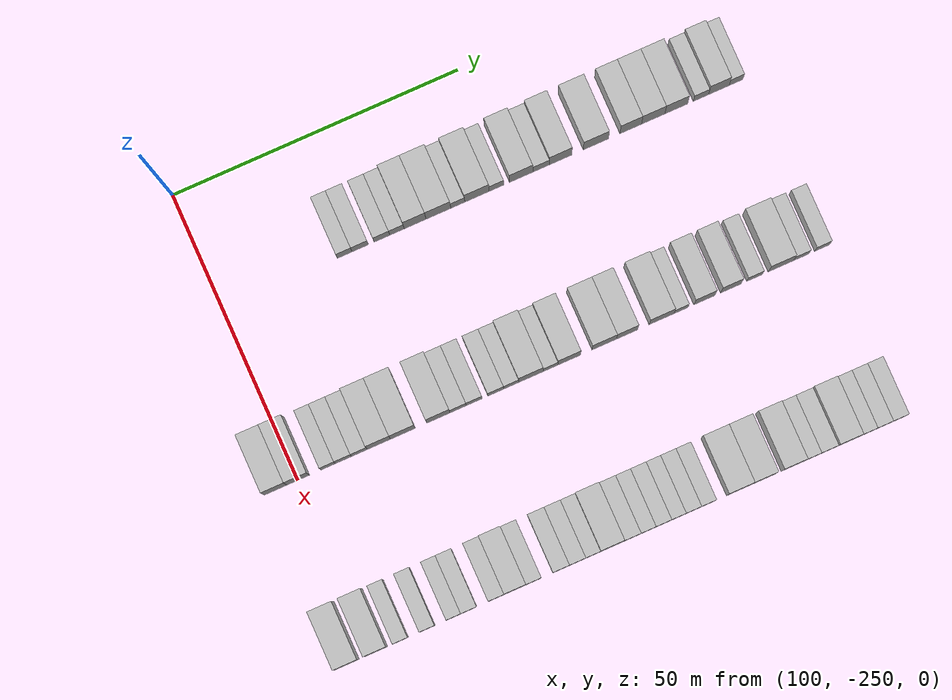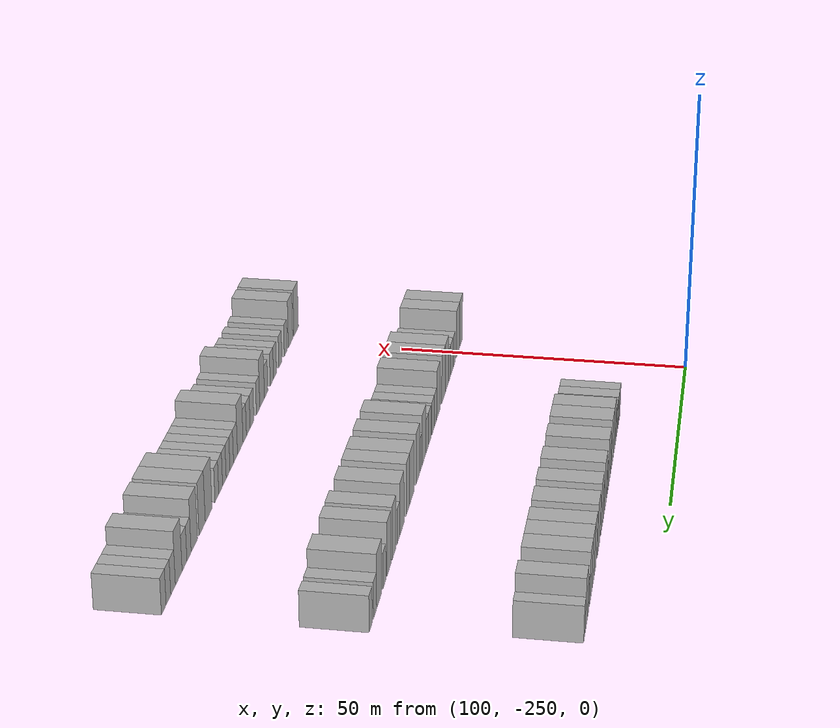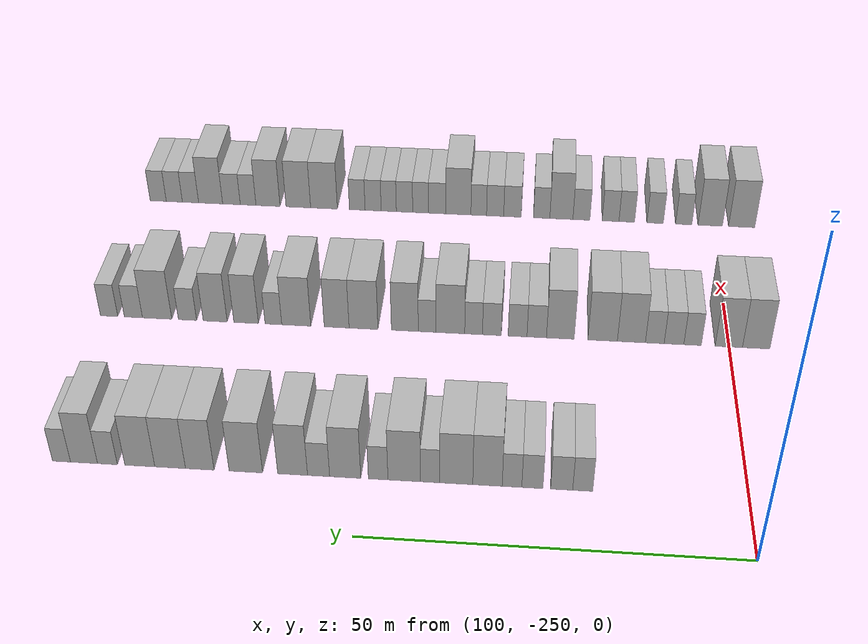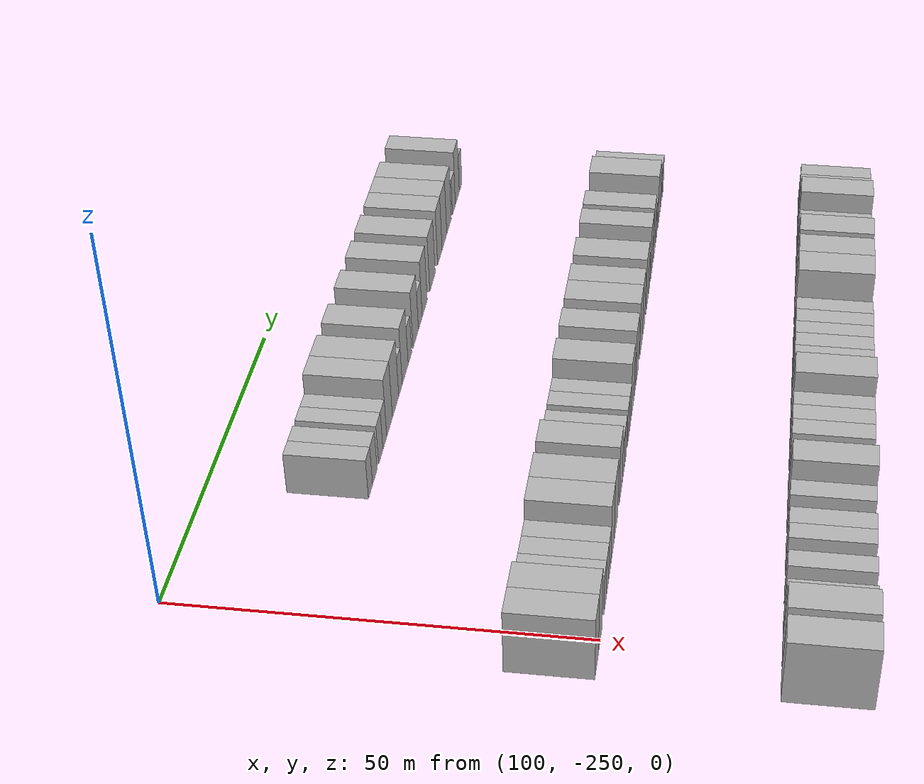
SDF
<sdf version="1.6">
 <world name="default">
  <model name="building_731">
   <static>1</static>
   <pose>115.0000 -228.6393 0 0.000000 0.000000 0.000000</pose>
   <link name="link">
    <pose>0 0 3.00 0 0 0</pose>
    <collision name="collision"><geometry><box><size>10.0000 2.5775 6.0000</size></box></geometry></collision>
    <visual name="visual">
     <cast_shadows>0</cast_shadows>
     <geometry><box><size>10.0000 2.5775 6.0000</size></box></geometry>
     <material>
      <script>
       <uri>model://HANNAS_wall/materials/scripts</uri>
       <uri>model://HANNAS_wall/materials/textures</uri>
       <name>vrc/HANNAS_wall</name>
      </script>
     </material>
    </visual>
   </link>
  </model>
  <model name="building_732">
   <static>1</static>
   <pose>115.0000 -225.9281 0 0.000000 0.000000 0.000000</pose>
   <link name="link">
    <pose>0 0 3.00 0 0 0</pose>
    <collision name="collision"><geometry><box><size>10.0000 2.8450 6.0000</size></box></geometry></collision>
    <visual name="visual">
     <cast_shadows>0</cast_shadows>
     <geometry><box><size>10.0000 2.8450 6.0000</size></box></geometry>
     <material>
      <script>
       <uri>model://HANNAS_wall/materials/scripts</uri>
       <uri>model://HANNAS_wall/materials/textures</uri>
       <name>vrc/HANNAS_wall</name>
      </script>
     </material>
    </visual>
   </link>
  </model>
  <model name="building_733">
   <static>1</static>
   <pose>115.0000 -222.1396 0 0.000000 0.000000 0.000000</pose>
   <link name="link">
    <pose>0 0 3.00 0 0 0</pose>
    <collision name="collision"><geometry><box><size>10.0000 2.7319 6.0000</size></box></geometry></collision>
    <visual name="visual">
     <cast_shadows>0</cast_shadows>
     <geometry><box><size>10.0000 2.7319 6.0000</size></box></geometry>
     <material>
      <script>
       <uri>model://HANNAS_wall/materials/scripts</uri>
       <uri>model://HANNAS_wall/materials/textures</uri>
       <name>vrc/HANNAS_wall</name>
      </script>
     </material>
    </visual>
   </link>
  </model>
  <model name="building_734">
   <static>1</static>
   <pose>115.0000 -219.5051 0 0.000000 0.000000 0.000000</pose>
   <link name="link">
    <pose>0 0 3.00 0 0 0</pose>
    <collision name="collision"><geometry><box><size>10.0000 2.5371 6.0000</size></box></geometry></collision>
    <visual name="visual">
     <cast_shadows>0</cast_shadows>
     <geometry><box><size>10.0000 2.5371 6.0000</size></box></geometry>
     <material>
      <script>
       <uri>model://HANNAS_wall/materials/scripts</uri>
       <uri>model://HANNAS_wall/materials/textures</uri>
       <name>vrc/HANNAS_wall</name>
      </script>
     </material>
    </visual>
   </link>
  </model>
  <model name="building_735">
   <static>1</static>
   <pose>115.0000 -216.3260 0 0.000000 0.000000 0.000000</pose>
   <link name="link">
    <pose>0 0 4.50 0 0 0</pose>
    <collision name="collision"><geometry><box><size>10.0000 3.8211 9.0000</size></box></geometry></collision>
    <visual name="visual">
     <cast_shadows>0</cast_shadows>
     <geometry><box><size>10.0000 3.8211 9.0000</size></box></geometry>
     <material>
      <script>
       <uri>model://HANNAS_wall/materials/scripts</uri>
       <uri>model://HANNAS_wall/materials/textures</uri>
       <name>vrc/HANNAS_wall</name>
      </script>
     </material>
    </visual>
   </link>
  </model>
  <model name="building_736">
   <static>1</static>
   <pose>115.0000 -212.2448 0 0.000000 0.000000 0.000000</pose>
   <link name="link">
    <pose>0 0 4.50 0 0 0</pose>
    <collision name="collision"><geometry><box><size>10.0000 4.3413 9.0000</size></box></geometry></collision>
    <visual name="visual">
     <cast_shadows>0</cast_shadows>
     <geometry><box><size>10.0000 4.3413 9.0000</size></box></geometry>
     <material>
      <script>
       <uri>model://HANNAS_wall/materials/scripts</uri>
       <uri>model://HANNAS_wall/materials/textures</uri>
       <name>vrc/HANNAS_wall</name>
      </script>
     </material>
    </visual>
   </link>
  </model>
  <model name="building_737">
   <static>1</static>
   <pose>115.0000 -208.8425 0 0.000000 0.000000 0.000000</pose>
   <link name="link">
    <pose>0 0 3.00 0 0 0</pose>
    <collision name="collision"><geometry><box><size>10.0000 2.4634 6.0000</size></box></geometry></collision>
    <visual name="visual">
     <cast_shadows>0</cast_shadows>
     <geometry><box><size>10.0000 2.4634 6.0000</size></box></geometry>
     <material>
      <script>
       <uri>model://HANNAS_wall/materials/scripts</uri>
       <uri>model://HANNAS_wall/materials/textures</uri>
       <name>vrc/HANNAS_wall</name>
      </script>
     </material>
    </visual>
   </link>
  </model>
  <model name="building_738">
   <static>1</static>
   <pose>115.0000 -205.4782 0 0.000000 0.000000 0.000000</pose>
   <link name="link">
    <pose>0 0 4.50 0 0 0</pose>
    <collision name="collision"><geometry><box><size>10.0000 4.2651 9.0000</size></box></geometry></collision>
    <visual name="visual">
     <cast_shadows>0</cast_shadows>
     <geometry><box><size>10.0000 4.2651 9.0000</size></box></geometry>
     <material>
      <script>
       <uri>model://HANNAS_wall/materials/scripts</uri>
       <uri>model://HANNAS_wall/materials/textures</uri>
       <name>vrc/HANNAS_wall</name>
      </script>
     </material>
    </visual>
   </link>
  </model>
  <model name="building_739">
   <static>1</static>
   <pose>115.0000 -202.0649 0 0.000000 0.000000 0.000000</pose>
   <link name="link">
    <pose>0 0 3.00 0 0 0</pose>
    <collision name="collision"><geometry><box><size>10.0000 2.5614 6.0000</size></box></geometry></collision>
    <visual name="visual">
     <cast_shadows>0</cast_shadows>
     <geometry><box><size>10.0000 2.5614 6.0000</size></box></geometry>
     <material>
      <script>
       <uri>model://HANNAS_wall/materials/scripts</uri>
       <uri>model://HANNAS_wall/materials/textures</uri>
       <name>vrc/HANNAS_wall</name>
      </script>
     </material>
    </visual>
   </link>
  </model>
  <model name="building_740">
   <static>1</static>
   <pose>115.0000 -197.7378 0 0.000000 0.000000 0.000000</pose>
   <link name="link">
    <pose>0 0 4.50 0 0 0</pose>
    <collision name="collision"><geometry><box><size>10.0000 4.0928 9.0000</size></box></geometry></collision>
    <visual name="visual">
     <cast_shadows>0</cast_shadows>
     <geometry><box><size>10.0000 4.0928 9.0000</size></box></geometry>
     <material>
      <script>
       <uri>model://HANNAS_wall/materials/scripts</uri>
       <uri>model://HANNAS_wall/materials/textures</uri>
       <name>vrc/HANNAS_wall</name>
      </script>
     </material>
    </visual>
   </link>
  </model>
  <model name="building_741">
   <static>1</static>
   <pose>115.0000 -194.2360 0 0.000000 0.000000 0.000000</pose>
   <link name="link">
    <pose>0 0 3.00 0 0 0</pose>
    <collision name="collision"><geometry><box><size>10.0000 2.9108 6.0000</size></box></geometry></collision>
    <visual name="visual">
     <cast_shadows>0</cast_shadows>
     <geometry><box><size>10.0000 2.9108 6.0000</size></box></geometry>
     <material>
      <script>
       <uri>model://HANNAS_wall/materials/scripts</uri>
       <uri>model://HANNAS_wall/materials/textures</uri>
       <name>vrc/HANNAS_wall</name>
      </script>
     </material>
    </visual>
   </link>
  </model>
  <model name="building_742">
   <static>1</static>
   <pose>115.0000 -190.8063 0 0.000000 0.000000 0.000000</pose>
   <link name="link">
    <pose>0 0 4.50 0 0 0</pose>
    <collision name="collision"><geometry><box><size>10.0000 3.9486 9.0000</size></box></geometry></collision>
    <visual name="visual">
     <cast_shadows>0</cast_shadows>
     <geometry><box><size>10.0000 3.9486 9.0000</size></box></geometry>
     <material>
      <script>
       <uri>model://HANNAS_wall/materials/scripts</uri>
       <uri>model://HANNAS_wall/materials/textures</uri>
       <name>vrc/HANNAS_wall</name>
      </script>
     </material>
    </visual>
   </link>
  </model>
  <model name="building_743">
   <static>1</static>
   <pose>115.0000 -184.6106 0 0.000000 0.000000 0.000000</pose>
   <link name="link">
    <pose>0 0 4.50 0 0 0</pose>
    <collision name="collision"><geometry><box><size>10.0000 4.4428 9.0000</size></box></geometry></collision>
    <visual name="visual">
     <cast_shadows>0</cast_shadows>
     <geometry><box><size>10.0000 4.4428 9.0000</size></box></geometry>
     <material>
      <script>
       <uri>model://HANNAS_wall/materials/scripts</uri>
       <uri>model://HANNAS_wall/materials/textures</uri>
       <name>vrc/HANNAS_wall</name>
      </script>
     </material>
    </visual>
   </link>
  </model>
  <model name="building_744">
   <static>1</static>
   <pose>115.0000 -178.4883 0 0.000000 0.000000 0.000000</pose>
   <link name="link">
    <pose>0 0 4.50 0 0 0</pose>
    <collision name="collision"><geometry><box><size>10.0000 3.8018 9.0000</size></box></geometry></collision>
    <visual name="visual">
     <cast_shadows>0</cast_shadows>
     <geometry><box><size>10.0000 3.8018 9.0000</size></box></geometry>
     <material>
      <script>
       <uri>model://HANNAS_wall/materials/scripts</uri>
       <uri>model://HANNAS_wall/materials/textures</uri>
       <name>vrc/HANNAS_wall</name>
      </script>
     </material>
    </visual>
   </link>
  </model>
  <model name="building_745">
   <static>1</static>
   <pose>115.0000 -174.5412 0 0.000000 0.000000 0.000000</pose>
   <link name="link">
    <pose>0 0 4.50 0 0 0</pose>
    <collision name="collision"><geometry><box><size>10.0000 4.0923 9.0000</size></box></geometry></collision>
    <visual name="visual">
     <cast_shadows>0</cast_shadows>
     <geometry><box><size>10.0000 4.0923 9.0000</size></box></geometry>
     <material>
      <script>
       <uri>model://HANNAS_wall/materials/scripts</uri>
       <uri>model://HANNAS_wall/materials/textures</uri>
       <name>vrc/HANNAS_wall</name>
      </script>
     </material>
    </visual>
   </link>
  </model>
  <model name="building_746">
   <static>1</static>
   <pose>115.0000 -170.4857 0 0.000000 0.000000 0.000000</pose>
   <link name="link">
    <pose>0 0 4.50 0 0 0</pose>
    <collision name="collision"><geometry><box><size>10.0000 4.0188 9.0000</size></box></geometry></collision>
    <visual name="visual">
     <cast_shadows>0</cast_shadows>
     <geometry><box><size>10.0000 4.0188 9.0000</size></box></geometry>
     <material>
      <script>
       <uri>model://HANNAS_wall/materials/scripts</uri>
       <uri>model://HANNAS_wall/materials/textures</uri>
       <name>vrc/HANNAS_wall</name>
      </script>
     </material>
    </visual>
   </link>
  </model>
  <model name="building_747">
   <static>1</static>
   <pose>115.0000 -166.1455 0 0.000000 0.000000 0.000000</pose>
   <link name="link">
    <pose>0 0 3.00 0 0 0</pose>
    <collision name="collision"><geometry><box><size>10.0000 2.6617 6.0000</size></box></geometry></collision>
    <visual name="visual">
     <cast_shadows>0</cast_shadows>
     <geometry><box><size>10.0000 2.6617 6.0000</size></box></geometry>
     <material>
      <script>
       <uri>model://HANNAS_wall/materials/scripts</uri>
       <uri>model://HANNAS_wall/materials/textures</uri>
       <name>vrc/HANNAS_wall</name>
      </script>
     </material>
    </visual>
   </link>
  </model>
  <model name="building_748">
   <static>1</static>
   <pose>115.0000 -162.9969 0 0.000000 0.000000 0.000000</pose>
   <link name="link">
    <pose>0 0 4.50 0 0 0</pose>
    <collision name="collision"><geometry><box><size>10.0000 3.6353 9.0000</size></box></geometry></collision>
    <visual name="visual">
     <cast_shadows>0</cast_shadows>
     <geometry><box><size>10.0000 3.6353 9.0000</size></box></geometry>
     <material>
      <script>
       <uri>model://HANNAS_wall/materials/scripts</uri>
       <uri>model://HANNAS_wall/materials/textures</uri>
       <name>vrc/HANNAS_wall</name>
      </script>
     </material>
    </visual>
   </link>
  </model>
  <model name="building_749">
   <static>1</static>
   <pose>115.0000 -159.9671 0 0.000000 0.000000 0.000000</pose>
   <link name="link">
    <pose>0 0 3.00 0 0 0</pose>
    <collision name="collision"><geometry><box><size>10.0000 2.4243 6.0000</size></box></geometry></collision>
    <visual name="visual">
     <cast_shadows>0</cast_shadows>
     <geometry><box><size>10.0000 2.4243 6.0000</size></box></geometry>
     <material>
      <script>
       <uri>model://HANNAS_wall/materials/scripts</uri>
       <uri>model://HANNAS_wall/materials/textures</uri>
       <name>vrc/HANNAS_wall</name>
      </script>
     </material>
    </visual>
   </link>
  </model>
  <model name="building_958">
   <static>1</static>
   <pose>145.0000 -253.8489 0 0.000000 0.000000 0.000000</pose>
   <link name="link">
    <pose>0 0 4.50 0 0 0</pose>
    <collision name="collision"><geometry><box><size>10.0000 3.9405 9.0000</size></box></geometry></collision>
    <visual name="visual">
     <cast_shadows>0</cast_shadows>
     <geometry><box><size>10.0000 3.9405 9.0000</size></box></geometry>
     <material>
      <script>
       <uri>model://HANNAS_wall/materials/scripts</uri>
       <uri>model://HANNAS_wall/materials/textures</uri>
       <name>vrc/HANNAS_wall</name>
      </script>
     </material>
    </visual>
   </link>
  </model>
  <model name="building_959">
   <static>1</static>
   <pose>145.0000 -249.9134 0 0.000000 0.000000 0.000000</pose>
   <link name="link">
    <pose>0 0 4.50 0 0 0</pose>
    <collision name="collision"><geometry><box><size>10.0000 3.9305 9.0000</size></box></geometry></collision>
    <visual name="visual">
     <cast_shadows>0</cast_shadows>
     <geometry><box><size>10.0000 3.9305 9.0000</size></box></geometry>
     <material>
      <script>
       <uri>model://HANNAS_wall/materials/scripts</uri>
       <uri>model://HANNAS_wall/materials/textures</uri>
       <name>vrc/HANNAS_wall</name>
      </script>
     </material>
    </visual>
   </link>
  </model>
  <model name="building_960">
   <static>1</static>
   <pose>145.0000 -244.6900 0 0.000000 0.000000 0.000000</pose>
   <link name="link">
    <pose>0 0 3.00 0 0 0</pose>
    <collision name="collision"><geometry><box><size>10.0000 2.5164 6.0000</size></box></geometry></collision>
    <visual name="visual">
     <cast_shadows>0</cast_shadows>
     <geometry><box><size>10.0000 2.5164 6.0000</size></box></geometry>
     <material>
      <script>
       <uri>model://HANNAS_wall/materials/scripts</uri>
       <uri>model://HANNAS_wall/materials/textures</uri>
       <name>vrc/HANNAS_wall</name>
      </script>
     </material>
    </visual>
   </link>
  </model>
  <model name="building_961">
   <static>1</static>
   <pose>145.0000 -242.0096 0 0.000000 0.000000 0.000000</pose>
   <link name="link">
    <pose>0 0 3.00 0 0 0</pose>
    <collision name="collision"><geometry><box><size>10.0000 2.8443 6.0000</size></box></geometry></collision>
    <visual name="visual">
     <cast_shadows>0</cast_shadows>
     <geometry><box><size>10.0000 2.8443 6.0000</size></box></geometry>
     <material>
      <script>
       <uri>model://HANNAS_wall/materials/scripts</uri>
       <uri>model://HANNAS_wall/materials/textures</uri>
       <name>vrc/HANNAS_wall</name>
      </script>
     </material>
    </visual>
   </link>
  </model>
  <model name="building_962">
   <static>1</static>
   <pose>145.0000 -239.2273 0 0.000000 0.000000 0.000000</pose>
   <link name="link">
    <pose>0 0 3.00 0 0 0</pose>
    <collision name="collision"><geometry><box><size>10.0000 2.7202 6.0000</size></box></geometry></collision>
    <visual name="visual">
     <cast_shadows>0</cast_shadows>
     <geometry><box><size>10.0000 2.7202 6.0000</size></box></geometry>
     <material>
      <script>
       <uri>model://HANNAS_wall/materials/scripts</uri>
       <uri>model://HANNAS_wall/materials/textures</uri>
       <name>vrc/HANNAS_wall</name>
      </script>
     </material>
    </visual>
   </link>
  </model>
  <model name="building_963">
   <static>1</static>
   <pose>145.0000 -235.8309 0 0.000000 0.000000 0.000000</pose>
   <link name="link">
    <pose>0 0 4.50 0 0 0</pose>
    <collision name="collision"><geometry><box><size>10.0000 4.0727 9.0000</size></box></geometry></collision>
    <visual name="visual">
     <cast_shadows>0</cast_shadows>
     <geometry><box><size>10.0000 4.0727 9.0000</size></box></geometry>
     <material>
      <script>
       <uri>model://HANNAS_wall/materials/scripts</uri>
       <uri>model://HANNAS_wall/materials/textures</uri>
       <name>vrc/HANNAS_wall</name>
      </script>
     </material>
    </visual>
   </link>
  </model>
  <model name="building_964">
   <static>1</static>
   <pose>145.0000 -231.6498 0 0.000000 0.000000 0.000000</pose>
   <link name="link">
    <pose>0 0 4.50 0 0 0</pose>
    <collision name="collision"><geometry><box><size>10.0000 4.2896 9.0000</size></box></geometry></collision>
    <visual name="visual">
     <cast_shadows>0</cast_shadows>
     <geometry><box><size>10.0000 4.2896 9.0000</size></box></geometry>
     <material>
      <script>
       <uri>model://HANNAS_wall/materials/scripts</uri>
       <uri>model://HANNAS_wall/materials/textures</uri>
       <name>vrc/HANNAS_wall</name>
      </script>
     </material>
    </visual>
   </link>
  </model>
  <model name="building_965">
   <static>1</static>
   <pose>145.0000 -225.4809 0 0.000000 0.000000 0.000000</pose>
   <link name="link">
    <pose>0 0 4.50 0 0 0</pose>
    <collision name="collision"><geometry><box><size>10.0000 4.0481 9.0000</size></box></geometry></collision>
    <visual name="visual">
     <cast_shadows>0</cast_shadows>
     <geometry><box><size>10.0000 4.0481 9.0000</size></box></geometry>
     <material>
      <script>
       <uri>model://HANNAS_wall/materials/scripts</uri>
       <uri>model://HANNAS_wall/materials/textures</uri>
       <name>vrc/HANNAS_wall</name>
      </script>
     </material>
    </visual>
   </link>
  </model>
  <model name="building_966">
   <static>1</static>
   <pose>145.0000 -222.0328 0 0.000000 0.000000 0.000000</pose>
   <link name="link">
    <pose>0 0 3.00 0 0 0</pose>
    <collision name="collision"><geometry><box><size>10.0000 2.8480 6.0000</size></box></geometry></collision>
    <visual name="visual">
     <cast_shadows>0</cast_shadows>
     <geometry><box><size>10.0000 2.8480 6.0000</size></box></geometry>
     <material>
      <script>
       <uri>model://HANNAS_wall/materials/scripts</uri>
       <uri>model://HANNAS_wall/materials/textures</uri>
       <name>vrc/HANNAS_wall</name>
      </script>
     </material>
    </visual>
   </link>
  </model>
  <model name="building_967">
   <static>1</static>
   <pose>145.0000 -219.2285 0 0.000000 0.000000 0.000000</pose>
   <link name="link">
    <pose>0 0 3.00 0 0 0</pose>
    <collision name="collision"><geometry><box><size>10.0000 2.7607 6.0000</size></box></geometry></collision>
    <visual name="visual">
     <cast_shadows>0</cast_shadows>
     <geometry><box><size>10.0000 2.7607 6.0000</size></box></geometry>
     <material>
      <script>
       <uri>model://HANNAS_wall/materials/scripts</uri>
       <uri>model://HANNAS_wall/materials/textures</uri>
       <name>vrc/HANNAS_wall</name>
      </script>
     </material>
    </visual>
   </link>
  </model>
  <model name="building_968">
   <static>1</static>
   <pose>145.0000 -215.4663 0 0.000000 0.000000 0.000000</pose>
   <link name="link">
    <pose>0 0 3.00 0 0 0</pose>
    <collision name="collision"><geometry><box><size>10.0000 2.7637 6.0000</size></box></geometry></collision>
    <visual name="visual">
     <cast_shadows>0</cast_shadows>
     <geometry><box><size>10.0000 2.7637 6.0000</size></box></geometry>
     <material>
      <script>
       <uri>model://HANNAS_wall/materials/scripts</uri>
       <uri>model://HANNAS_wall/materials/textures</uri>
       <name>vrc/HANNAS_wall</name>
      </script>
     </material>
    </visual>
   </link>
  </model>
  <model name="building_969">
   <static>1</static>
   <pose>145.0000 -212.7775 0 0.000000 0.000000 0.000000</pose>
   <link name="link">
    <pose>0 0 3.00 0 0 0</pose>
    <collision name="collision"><geometry><box><size>10.0000 2.6139 6.0000</size></box></geometry></collision>
    <visual name="visual">
     <cast_shadows>0</cast_shadows>
     <geometry><box><size>10.0000 2.6139 6.0000</size></box></geometry>
     <material>
      <script>
       <uri>model://HANNAS_wall/materials/scripts</uri>
       <uri>model://HANNAS_wall/materials/textures</uri>
       <name>vrc/HANNAS_wall</name>
      </script>
     </material>
    </visual>
   </link>
  </model>
  <model name="building_970">
   <static>1</static>
   <pose>145.0000 -209.3366 0 0.000000 0.000000 0.000000</pose>
   <link name="link">
    <pose>0 0 4.50 0 0 0</pose>
    <collision name="collision"><geometry><box><size>10.0000 4.2678 9.0000</size></box></geometry></collision>
    <visual name="visual">
     <cast_shadows>0</cast_shadows>
     <geometry><box><size>10.0000 4.2678 9.0000</size></box></geometry>
     <material>
      <script>
       <uri>model://HANNAS_wall/materials/scripts</uri>
       <uri>model://HANNAS_wall/materials/textures</uri>
       <name>vrc/HANNAS_wall</name>
      </script>
     </material>
    </visual>
   </link>
  </model>
  <model name="building_971">
   <static>1</static>
   <pose>145.0000 -205.9137 0 0.000000 0.000000 0.000000</pose>
   <link name="link">
    <pose>0 0 3.00 0 0 0</pose>
    <collision name="collision"><geometry><box><size>10.0000 2.5779 6.0000</size></box></geometry></collision>
    <visual name="visual">
     <cast_shadows>0</cast_shadows>
     <geometry><box><size>10.0000 2.5779 6.0000</size></box></geometry>
     <material>
      <script>
       <uri>model://HANNAS_wall/materials/scripts</uri>
       <uri>model://HANNAS_wall/materials/textures</uri>
       <name>vrc/HANNAS_wall</name>
      </script>
     </material>
    </visual>
   </link>
  </model>
  <model name="building_972">
   <static>1</static>
   <pose>145.0000 -202.6365 0 0.000000 0.000000 0.000000</pose>
   <link name="link">
    <pose>0 0 4.50 0 0 0</pose>
    <collision name="collision"><geometry><box><size>10.0000 3.9765 9.0000</size></box></geometry></collision>
    <visual name="visual">
     <cast_shadows>0</cast_shadows>
     <geometry><box><size>10.0000 3.9765 9.0000</size></box></geometry>
     <material>
      <script>
       <uri>model://HANNAS_wall/materials/scripts</uri>
       <uri>model://HANNAS_wall/materials/textures</uri>
       <name>vrc/HANNAS_wall</name>
      </script>
     </material>
    </visual>
   </link>
  </model>
  <model name="building_973">
   <static>1</static>
   <pose>145.0000 -196.5045 0 0.000000 0.000000 0.000000</pose>
   <link name="link">
    <pose>0 0 4.50 0 0 0</pose>
    <collision name="collision"><geometry><box><size>10.0000 4.2876 9.0000</size></box></geometry></collision>
    <visual name="visual">
     <cast_shadows>0</cast_shadows>
     <geometry><box><size>10.0000 4.2876 9.0000</size></box></geometry>
     <material>
      <script>
       <uri>model://HANNAS_wall/materials/scripts</uri>
       <uri>model://HANNAS_wall/materials/textures</uri>
       <name>vrc/HANNAS_wall</name>
      </script>
     </material>
    </visual>
   </link>
  </model>
  <model name="building_974">
   <static>1</static>
   <pose>145.0000 -192.5092 0 0.000000 0.000000 0.000000</pose>
   <link name="link">
    <pose>0 0 4.50 0 0 0</pose>
    <collision name="collision"><geometry><box><size>10.0000 3.7030 9.0000</size></box></geometry></collision>
    <visual name="visual">
     <cast_shadows>0</cast_shadows>
     <geometry><box><size>10.0000 3.7030 9.0000</size></box></geometry>
     <material>
      <script>
       <uri>model://HANNAS_wall/materials/scripts</uri>
       <uri>model://HANNAS_wall/materials/textures</uri>
       <name>vrc/HANNAS_wall</name>
      </script>
     </material>
    </visual>
   </link>
  </model>
  <model name="building_975">
   <static>1</static>
   <pose>145.0000 -186.4864 0 0.000000 0.000000 0.000000</pose>
   <link name="link">
    <pose>0 0 4.50 0 0 0</pose>
    <collision name="collision"><geometry><box><size>10.0000 4.3426 9.0000</size></box></geometry></collision>
    <visual name="visual">
     <cast_shadows>0</cast_shadows>
     <geometry><box><size>10.0000 4.3426 9.0000</size></box></geometry>
     <material>
      <script>
       <uri>model://HANNAS_wall/materials/scripts</uri>
       <uri>model://HANNAS_wall/materials/textures</uri>
       <name>vrc/HANNAS_wall</name>
      </script>
     </material>
    </visual>
   </link>
  </model>
  <model name="building_976">
   <static>1</static>
   <pose>145.0000 -183.0651 0 0.000000 0.000000 0.000000</pose>
   <link name="link">
    <pose>0 0 3.00 0 0 0</pose>
    <collision name="collision"><geometry><box><size>10.0000 2.4999 6.0000</size></box></geometry></collision>
    <visual name="visual">
     <cast_shadows>0</cast_shadows>
     <geometry><box><size>10.0000 2.4999 6.0000</size></box></geometry>
     <material>
      <script>
       <uri>model://HANNAS_wall/materials/scripts</uri>
       <uri>model://HANNAS_wall/materials/textures</uri>
       <name>vrc/HANNAS_wall</name>
      </script>
     </material>
    </visual>
   </link>
  </model>
  <model name="building_977">
   <static>1</static>
   <pose>145.0000 -178.9729 0 0.000000 0.000000 0.000000</pose>
   <link name="link">
    <pose>0 0 4.50 0 0 0</pose>
    <collision name="collision"><geometry><box><size>10.0000 3.6846 9.0000</size></box></geometry></collision>
    <visual name="visual">
     <cast_shadows>0</cast_shadows>
     <geometry><box><size>10.0000 3.6846 9.0000</size></box></geometry>
     <material>
      <script>
       <uri>model://HANNAS_wall/materials/scripts</uri>
       <uri>model://HANNAS_wall/materials/textures</uri>
       <name>vrc/HANNAS_wall</name>
      </script>
     </material>
    </visual>
   </link>
  </model>
  <model name="building_978">
   <static>1</static>
   <pose>145.0000 -174.3267 0 0.000000 0.000000 0.000000</pose>
   <link name="link">
    <pose>0 0 4.50 0 0 0</pose>
    <collision name="collision"><geometry><box><size>10.0000 3.6078 9.0000</size></box></geometry></collision>
    <visual name="visual">
     <cast_shadows>0</cast_shadows>
     <geometry><box><size>10.0000 3.6078 9.0000</size></box></geometry>
     <material>
      <script>
       <uri>model://HANNAS_wall/materials/scripts</uri>
       <uri>model://HANNAS_wall/materials/textures</uri>
       <name>vrc/HANNAS_wall</name>
      </script>
     </material>
    </visual>
   </link>
  </model>
  <model name="building_979">
   <static>1</static>
   <pose>145.0000 -170.1530 0 0.000000 0.000000 0.000000</pose>
   <link name="link">
    <pose>0 0 3.00 0 0 0</pose>
    <collision name="collision"><geometry><box><size>10.0000 2.7397 6.0000</size></box></geometry></collision>
    <visual name="visual">
     <cast_shadows>0</cast_shadows>
     <geometry><box><size>10.0000 2.7397 6.0000</size></box></geometry>
     <material>
      <script>
       <uri>model://HANNAS_wall/materials/scripts</uri>
       <uri>model://HANNAS_wall/materials/textures</uri>
       <name>vrc/HANNAS_wall</name>
      </script>
     </material>
    </visual>
   </link>
  </model>
  <model name="building_980">
   <static>1</static>
   <pose>145.0000 -165.5642 0 0.000000 0.000000 0.000000</pose>
   <link name="link">
    <pose>0 0 4.50 0 0 0</pose>
    <collision name="collision"><geometry><box><size>10.0000 4.4377 9.0000</size></box></geometry></collision>
    <visual name="visual">
     <cast_shadows>0</cast_shadows>
     <geometry><box><size>10.0000 4.4377 9.0000</size></box></geometry>
     <material>
      <script>
       <uri>model://HANNAS_wall/materials/scripts</uri>
       <uri>model://HANNAS_wall/materials/textures</uri>
       <name>vrc/HANNAS_wall</name>
      </script>
     </material>
    </visual>
   </link>
  </model>
  <model name="building_981">
   <static>1</static>
   <pose>145.0000 -161.9743 0 0.000000 0.000000 0.000000</pose>
   <link name="link">
    <pose>0 0 3.00 0 0 0</pose>
    <collision name="collision"><geometry><box><size>10.0000 2.7422 6.0000</size></box></geometry></collision>
    <visual name="visual">
     <cast_shadows>0</cast_shadows>
     <geometry><box><size>10.0000 2.7422 6.0000</size></box></geometry>
     <material>
      <script>
       <uri>model://HANNAS_wall/materials/scripts</uri>
       <uri>model://HANNAS_wall/materials/textures</uri>
       <name>vrc/HANNAS_wall</name>
      </script>
     </material>
    </visual>
   </link>
  </model>
  <model name="building_982">
   <static>1</static>
   <pose>145.0000 -158.2867 0 0.000000 0.000000 0.000000</pose>
   <link name="link">
    <pose>0 0 3.00 0 0 0</pose>
    <collision name="collision"><geometry><box><size>10.0000 2.6329 6.0000</size></box></geometry></collision>
    <visual name="visual">
     <cast_shadows>0</cast_shadows>
     <geometry><box><size>10.0000 2.6329 6.0000</size></box></geometry>
     <material>
      <script>
       <uri>model://HANNAS_wall/materials/scripts</uri>
       <uri>model://HANNAS_wall/materials/textures</uri>
       <name>vrc/HANNAS_wall</name>
      </script>
     </material>
    </visual>
   </link>
  </model>
  <model name="building_1180">
   <static>1</static>
   <pose>175.0000 -254.5567 0 0.000000 0.000000 0.000000</pose>
   <link name="link">
    <pose>0 0 4.50 0 0 0</pose>
    <collision name="collision"><geometry><box><size>10.0000 4.1939 9.0000</size></box></geometry></collision>
    <visual name="visual">
     <cast_shadows>0</cast_shadows>
     <geometry><box><size>10.0000 4.1939 9.0000</size></box></geometry>
     <material>
      <script>
       <uri>model://HANNAS_wall/materials/scripts</uri>
       <uri>model://HANNAS_wall/materials/textures</uri>
       <name>vrc/HANNAS_wall</name>
      </script>
     </material>
    </visual>
   </link>
  </model>
  <model name="building_1181">
   <static>1</static>
   <pose>175.0000 -249.4983 0 0.000000 0.000000 0.000000</pose>
   <link name="link">
    <pose>0 0 4.50 0 0 0</pose>
    <collision name="collision"><geometry><box><size>10.0000 3.9228 9.0000</size></box></geometry></collision>
    <visual name="visual">
     <cast_shadows>0</cast_shadows>
     <geometry><box><size>10.0000 3.9228 9.0000</size></box></geometry>
     <material>
      <script>
       <uri>model://HANNAS_wall/materials/scripts</uri>
       <uri>model://HANNAS_wall/materials/textures</uri>
       <name>vrc/HANNAS_wall</name>
      </script>
     </material>
    </visual>
   </link>
  </model>
  <model name="building_1182">
   <static>1</static>
   <pose>175.0000 -245.2291 0 0.000000 0.000000 0.000000</pose>
   <link name="link">
    <pose>0 0 3.00 0 0 0</pose>
    <collision name="collision"><geometry><box><size>10.0000 2.6156 6.0000</size></box></geometry></collision>
    <visual name="visual">
     <cast_shadows>0</cast_shadows>
     <geometry><box><size>10.0000 2.6156 6.0000</size></box></geometry>
     <material>
      <script>
       <uri>model://HANNAS_wall/materials/scripts</uri>
       <uri>model://HANNAS_wall/materials/textures</uri>
       <name>vrc/HANNAS_wall</name>
      </script>
     </material>
    </visual>
   </link>
  </model>
  <model name="building_1183">
   <static>1</static>
   <pose>175.0000 -240.6002 0 0.000000 0.000000 0.000000</pose>
   <link name="link">
    <pose>0 0 3.00 0 0 0</pose>
    <collision name="collision"><geometry><box><size>10.0000 2.6421 6.0000</size></box></geometry></collision>
    <visual name="visual">
     <cast_shadows>0</cast_shadows>
     <geometry><box><size>10.0000 2.6421 6.0000</size></box></geometry>
     <material>
      <script>
       <uri>model://HANNAS_wall/materials/scripts</uri>
       <uri>model://HANNAS_wall/materials/textures</uri>
       <name>vrc/HANNAS_wall</name>
      </script>
     </material>
    </visual>
   </link>
  </model>
  <model name="building_1184">
   <static>1</static>
   <pose>175.0000 -236.0159 0 0.000000 0.000000 0.000000</pose>
   <link name="link">
    <pose>0 0 3.00 0 0 0</pose>
    <collision name="collision"><geometry><box><size>10.0000 2.5265 6.0000</size></box></geometry></collision>
    <visual name="visual">
     <cast_shadows>0</cast_shadows>
     <geometry><box><size>10.0000 2.5265 6.0000</size></box></geometry>
     <material>
      <script>
       <uri>model://HANNAS_wall/materials/scripts</uri>
       <uri>model://HANNAS_wall/materials/textures</uri>
       <name>vrc/HANNAS_wall</name>
      </script>
     </material>
    </visual>
   </link>
  </model>
  <model name="building_1185">
   <static>1</static>
   <pose>175.0000 -233.3888 0 0.000000 0.000000 0.000000</pose>
   <link name="link">
    <pose>0 0 3.00 0 0 0</pose>
    <collision name="collision"><geometry><box><size>10.0000 2.7277 6.0000</size></box></geometry></collision>
    <visual name="visual">
     <cast_shadows>0</cast_shadows>
     <geometry><box><size>10.0000 2.7277 6.0000</size></box></geometry>
     <material>
      <script>
       <uri>model://HANNAS_wall/materials/scripts</uri>
       <uri>model://HANNAS_wall/materials/textures</uri>
       <name>vrc/HANNAS_wall</name>
      </script>
     </material>
    </visual>
   </link>
  </model>
  <model name="building_1186">
   <static>1</static>
   <pose>175.0000 -228.6486 0 0.000000 0.000000 0.000000</pose>
   <link name="link">
    <pose>0 0 3.00 0 0 0</pose>
    <collision name="collision"><geometry><box><size>10.0000 2.7527 6.0000</size></box></geometry></collision>
    <visual name="visual">
     <cast_shadows>0</cast_shadows>
     <geometry><box><size>10.0000 2.7527 6.0000</size></box></geometry>
     <material>
      <script>
       <uri>model://HANNAS_wall/materials/scripts</uri>
       <uri>model://HANNAS_wall/materials/textures</uri>
       <name>vrc/HANNAS_wall</name>
      </script>
     </material>
    </visual>
   </link>
  </model>
  <model name="building_1187">
   <static>1</static>
   <pose>175.0000 -225.3887 0 0.000000 0.000000 0.000000</pose>
   <link name="link">
    <pose>0 0 4.50 0 0 0</pose>
    <collision name="collision"><geometry><box><size>10.0000 3.7672 9.0000</size></box></geometry></collision>
    <visual name="visual">
     <cast_shadows>0</cast_shadows>
     <geometry><box><size>10.0000 3.7672 9.0000</size></box></geometry>
     <material>
      <script>
       <uri>model://HANNAS_wall/materials/scripts</uri>
       <uri>model://HANNAS_wall/materials/textures</uri>
       <name>vrc/HANNAS_wall</name>
      </script>
     </material>
    </visual>
   </link>
  </model>
  <model name="building_1188">
   <static>1</static>
   <pose>175.0000 -222.1688 0 0.000000 0.000000 0.000000</pose>
   <link name="link">
    <pose>0 0 3.00 0 0 0</pose>
    <collision name="collision"><geometry><box><size>10.0000 2.6727 6.0000</size></box></geometry></collision>
    <visual name="visual">
     <cast_shadows>0</cast_shadows>
     <geometry><box><size>10.0000 2.6727 6.0000</size></box></geometry>
     <material>
      <script>
       <uri>model://HANNAS_wall/materials/scripts</uri>
       <uri>model://HANNAS_wall/materials/textures</uri>
       <name>vrc/HANNAS_wall</name>
      </script>
     </material>
    </visual>
   </link>
  </model>
  <model name="building_1189">
   <static>1</static>
   <pose>175.0000 -217.3999 0 0.000000 0.000000 0.000000</pose>
   <link name="link">
    <pose>0 0 3.00 0 0 0</pose>
    <collision name="collision"><geometry><box><size>10.0000 2.8651 6.0000</size></box></geometry></collision>
    <visual name="visual">
     <cast_shadows>0</cast_shadows>
     <geometry><box><size>10.0000 2.8651 6.0000</size></box></geometry>
     <material>
      <script>
       <uri>model://HANNAS_wall/materials/scripts</uri>
       <uri>model://HANNAS_wall/materials/textures</uri>
       <name>vrc/HANNAS_wall</name>
      </script>
     </material>
    </visual>
   </link>
  </model>
  <model name="building_1190">
   <static>1</static>
   <pose>175.0000 -214.5598 0 0.000000 0.000000 0.000000</pose>
   <link name="link">
    <pose>0 0 3.00 0 0 0</pose>
    <collision name="collision"><geometry><box><size>10.0000 2.8152 6.0000</size></box></geometry></collision>
    <visual name="visual">
     <cast_shadows>0</cast_shadows>
     <geometry><box><size>10.0000 2.8152 6.0000</size></box></geometry>
     <material>
      <script>
       <uri>model://HANNAS_wall/materials/scripts</uri>
       <uri>model://HANNAS_wall/materials/textures</uri>
       <name>vrc/HANNAS_wall</name>
      </script>
     </material>
    </visual>
   </link>
  </model>
  <model name="building_1191">
   <static>1</static>
   <pose>175.0000 -211.8718 0 0.000000 0.000000 0.000000</pose>
   <link name="link">
    <pose>0 0 3.00 0 0 0</pose>
    <collision name="collision"><geometry><box><size>10.0000 2.5607 6.0000</size></box></geometry></collision>
    <visual name="visual">
     <cast_shadows>0</cast_shadows>
     <geometry><box><size>10.0000 2.5607 6.0000</size></box></geometry>
     <material>
      <script>
       <uri>model://HANNAS_wall/materials/scripts</uri>
       <uri>model://HANNAS_wall/materials/textures</uri>
       <name>vrc/HANNAS_wall</name>
      </script>
     </material>
    </visual>
   </link>
  </model>
  <model name="building_1192">
   <static>1</static>
   <pose>175.0000 -208.5383 0 0.000000 0.000000 0.000000</pose>
   <link name="link">
    <pose>0 0 4.50 0 0 0</pose>
    <collision name="collision"><geometry><box><size>10.0000 4.1064 9.0000</size></box></geometry></collision>
    <visual name="visual">
     <cast_shadows>0</cast_shadows>
     <geometry><box><size>10.0000 4.1064 9.0000</size></box></geometry>
     <material>
      <script>
       <uri>model://HANNAS_wall/materials/scripts</uri>
       <uri>model://HANNAS_wall/materials/textures</uri>
       <name>vrc/HANNAS_wall</name>
      </script>
     </material>
    </visual>
   </link>
  </model>
  <model name="building_1193">
   <static>1</static>
   <pose>175.0000 -205.0345 0 0.000000 0.000000 0.000000</pose>
   <link name="link">
    <pose>0 0 3.00 0 0 0</pose>
    <collision name="collision"><geometry><box><size>10.0000 2.9011 6.0000</size></box></geometry></collision>
    <visual name="visual">
     <cast_shadows>0</cast_shadows>
     <geometry><box><size>10.0000 2.9011 6.0000</size></box></geometry>
     <material>
      <script>
       <uri>model://HANNAS_wall/materials/scripts</uri>
       <uri>model://HANNAS_wall/materials/textures</uri>
       <name>vrc/HANNAS_wall</name>
      </script>
     </material>
    </visual>
   </link>
  </model>
  <model name="building_1194">
   <static>1</static>
   <pose>175.0000 -202.2930 0 0.000000 0.000000 0.000000</pose>
   <link name="link">
    <pose>0 0 3.00 0 0 0</pose>
    <collision name="collision"><geometry><box><size>10.0000 2.5819 6.0000</size></box></geometry></collision>
    <visual name="visual">
     <cast_shadows>0</cast_shadows>
     <geometry><box><size>10.0000 2.5819 6.0000</size></box></geometry>
     <material>
      <script>
       <uri>model://HANNAS_wall/materials/scripts</uri>
       <uri>model://HANNAS_wall/materials/textures</uri>
       <name>vrc/HANNAS_wall</name>
      </script>
     </material>
    </visual>
   </link>
  </model>
  <model name="building_1195">
   <static>1</static>
   <pose>175.0000 -199.6511 0 0.000000 0.000000 0.000000</pose>
   <link name="link">
    <pose>0 0 3.00 0 0 0</pose>
    <collision name="collision"><geometry><box><size>10.0000 2.7019 6.0000</size></box></geometry></collision>
    <visual name="visual">
     <cast_shadows>0</cast_shadows>
     <geometry><box><size>10.0000 2.7019 6.0000</size></box></geometry>
     <material>
      <script>
       <uri>model://HANNAS_wall/materials/scripts</uri>
       <uri>model://HANNAS_wall/materials/textures</uri>
       <name>vrc/HANNAS_wall</name>
      </script>
     </material>
    </visual>
   </link>
  </model>
  <model name="building_1196">
   <static>1</static>
   <pose>175.0000 -197.0467 0 0.000000 0.000000 0.000000</pose>
   <link name="link">
    <pose>0 0 3.00 0 0 0</pose>
    <collision name="collision"><geometry><box><size>10.0000 2.5068 6.0000</size></box></geometry></collision>
    <visual name="visual">
     <cast_shadows>0</cast_shadows>
     <geometry><box><size>10.0000 2.5068 6.0000</size></box></geometry>
     <material>
      <script>
       <uri>model://HANNAS_wall/materials/scripts</uri>
       <uri>model://HANNAS_wall/materials/textures</uri>
       <name>vrc/HANNAS_wall</name>
      </script>
     </material>
    </visual>
   </link>
  </model>
  <model name="building_1197">
   <static>1</static>
   <pose>175.0000 -194.4607 0 0.000000 0.000000 0.000000</pose>
   <link name="link">
    <pose>0 0 3.00 0 0 0</pose>
    <collision name="collision"><geometry><box><size>10.0000 2.6652 6.0000</size></box></geometry></collision>
    <visual name="visual">
     <cast_shadows>0</cast_shadows>
     <geometry><box><size>10.0000 2.6652 6.0000</size></box></geometry>
     <material>
      <script>
       <uri>model://HANNAS_wall/materials/scripts</uri>
       <uri>model://HANNAS_wall/materials/textures</uri>
       <name>vrc/HANNAS_wall</name>
      </script>
     </material>
    </visual>
   </link>
  </model>
  <model name="building_1198">
   <static>1</static>
   <pose>175.0000 -191.8304 0 0.000000 0.000000 0.000000</pose>
   <link name="link">
    <pose>0 0 3.00 0 0 0</pose>
    <collision name="collision"><geometry><box><size>10.0000 2.5954 6.0000</size></box></geometry></collision>
    <visual name="visual">
     <cast_shadows>0</cast_shadows>
     <geometry><box><size>10.0000 2.5954 6.0000</size></box></geometry>
     <material>
      <script>
       <uri>model://HANNAS_wall/materials/scripts</uri>
       <uri>model://HANNAS_wall/materials/textures</uri>
       <name>vrc/HANNAS_wall</name>
      </script>
     </material>
    </visual>
   </link>
  </model>
  <model name="building_1199">
   <static>1</static>
   <pose>175.0000 -186.3019 0 0.000000 0.000000 0.000000</pose>
   <link name="link">
    <pose>0 0 4.50 0 0 0</pose>
    <collision name="collision"><geometry><box><size>10.0000 4.4616 9.0000</size></box></geometry></collision>
    <visual name="visual">
     <cast_shadows>0</cast_shadows>
     <geometry><box><size>10.0000 4.4616 9.0000</size></box></geometry>
     <material>
      <script>
       <uri>model://HANNAS_wall/materials/scripts</uri>
       <uri>model://HANNAS_wall/materials/textures</uri>
       <name>vrc/HANNAS_wall</name>
      </script>
     </material>
    </visual>
   </link>
  </model>
  <model name="building_1200">
   <static>1</static>
   <pose>175.0000 -182.0220 0 0.000000 0.000000 0.000000</pose>
   <link name="link">
    <pose>0 0 4.50 0 0 0</pose>
    <collision name="collision"><geometry><box><size>10.0000 4.0981 9.0000</size></box></geometry></collision>
    <visual name="visual">
     <cast_shadows>0</cast_shadows>
     <geometry><box><size>10.0000 4.0981 9.0000</size></box></geometry>
     <material>
      <script>
       <uri>model://HANNAS_wall/materials/scripts</uri>
       <uri>model://HANNAS_wall/materials/textures</uri>
       <name>vrc/HANNAS_wall</name>
      </script>
     </material>
    </visual>
   </link>
  </model>
  <model name="building_1201">
   <static>1</static>
   <pose>175.0000 -176.9607 0 0.000000 0.000000 0.000000</pose>
   <link name="link">
    <pose>0 0 4.50 0 0 0</pose>
    <collision name="collision"><geometry><box><size>10.0000 4.0245 9.0000</size></box></geometry></collision>
    <visual name="visual">
     <cast_shadows>0</cast_shadows>
     <geometry><box><size>10.0000 4.0245 9.0000</size></box></geometry>
     <material>
      <script>
       <uri>model://HANNAS_wall/materials/scripts</uri>
       <uri>model://HANNAS_wall/materials/textures</uri>
       <name>vrc/HANNAS_wall</name>
      </script>
     </material>
    </visual>
   </link>
  </model>
  <model name="building_1202">
   <static>1</static>
   <pose>175.0000 -173.6360 0 0.000000 0.000000 0.000000</pose>
   <link name="link">
    <pose>0 0 3.00 0 0 0</pose>
    <collision name="collision"><geometry><box><size>10.0000 2.6250 6.0000</size></box></geometry></collision>
    <visual name="visual">
     <cast_shadows>0</cast_shadows>
     <geometry><box><size>10.0000 2.6250 6.0000</size></box></geometry>
     <material>
      <script>
       <uri>model://HANNAS_wall/materials/scripts</uri>
       <uri>model://HANNAS_wall/materials/textures</uri>
       <name>vrc/HANNAS_wall</name>
      </script>
     </material>
    </visual>
   </link>
  </model>
  <model name="building_1203">
   <static>1</static>
   <pose>175.0000 -170.8391 0 0.000000 0.000000 0.000000</pose>
   <link name="link">
    <pose>0 0 3.00 0 0 0</pose>
    <collision name="collision"><geometry><box><size>10.0000 2.9688 6.0000</size></box></geometry></collision>
    <visual name="visual">
     <cast_shadows>0</cast_shadows>
     <geometry><box><size>10.0000 2.9688 6.0000</size></box></geometry>
     <material>
      <script>
       <uri>model://HANNAS_wall/materials/scripts</uri>
       <uri>model://HANNAS_wall/materials/textures</uri>
       <name>vrc/HANNAS_wall</name>
      </script>
     </material>
    </visual>
   </link>
  </model>
  <model name="building_1204">
   <static>1</static>
   <pose>175.0000 -167.3400 0 0.000000 0.000000 0.000000</pose>
   <link name="link">
    <pose>0 0 4.50 0 0 0</pose>
    <collision name="collision"><geometry><box><size>10.0000 4.0295 9.0000</size></box></geometry></collision>
    <visual name="visual">
     <cast_shadows>0</cast_shadows>
     <geometry><box><size>10.0000 4.0295 9.0000</size></box></geometry>
     <material>
      <script>
       <uri>model://HANNAS_wall/materials/scripts</uri>
       <uri>model://HANNAS_wall/materials/textures</uri>
       <name>vrc/HANNAS_wall</name>
      </script>
     </material>
    </visual>
   </link>
  </model>
  <model name="building_1205">
   <static>1</static>
   <pose>175.0000 -163.9598 0 0.000000 0.000000 0.000000</pose>
   <link name="link">
    <pose>0 0 3.00 0 0 0</pose>
    <collision name="collision"><geometry><box><size>10.0000 2.7309 6.0000</size></box></geometry></collision>
    <visual name="visual">
     <cast_shadows>0</cast_shadows>
     <geometry><box><size>10.0000 2.7309 6.0000</size></box></geometry>
     <material>
      <script>
       <uri>model://HANNAS_wall/materials/scripts</uri>
       <uri>model://HANNAS_wall/materials/textures</uri>
       <name>vrc/HANNAS_wall</name>
      </script>
     </material>
    </visual>
   </link>
  </model>
  <model name="building_1206">
   <static>1</static>
   <pose>175.0000 -161.2366 0 0.000000 0.000000 0.000000</pose>
   <link name="link">
    <pose>0 0 3.00 0 0 0</pose>
    <collision name="collision"><geometry><box><size>10.0000 2.7154 6.0000</size></box></geometry></collision>
    <visual name="visual">
     <cast_shadows>0</cast_shadows>
     <geometry><box><size>10.0000 2.7154 6.0000</size></box></geometry>
     <material>
      <script>
       <uri>model://HANNAS_wall/materials/scripts</uri>
       <uri>model://HANNAS_wall/materials/textures</uri>
       <name>vrc/HANNAS_wall</name>
      </script>
     </material>
    </visual>
   </link>
  </model>
  <model name="building_1207">
   <static>1</static>
   <pose>175.0000 -158.5199 0 0.000000 0.000000 0.000000</pose>
   <link name="link">
    <pose>0 0 3.00 0 0 0</pose>
    <collision name="collision"><geometry><box><size>10.0000 2.7181 6.0000</size></box></geometry></collision>
    <visual name="visual">
     <cast_shadows>0</cast_shadows>
     <geometry><box><size>10.0000 2.7181 6.0000</size></box></geometry>
     <material>
      <script>
       <uri>model://HANNAS_wall/materials/scripts</uri>
       <uri>model://HANNAS_wall/materials/textures</uri>
       <name>vrc/HANNAS_wall</name>
      </script>
     </material>
    </visual>
   </link>
  </model>
 </world>
</sdf>
